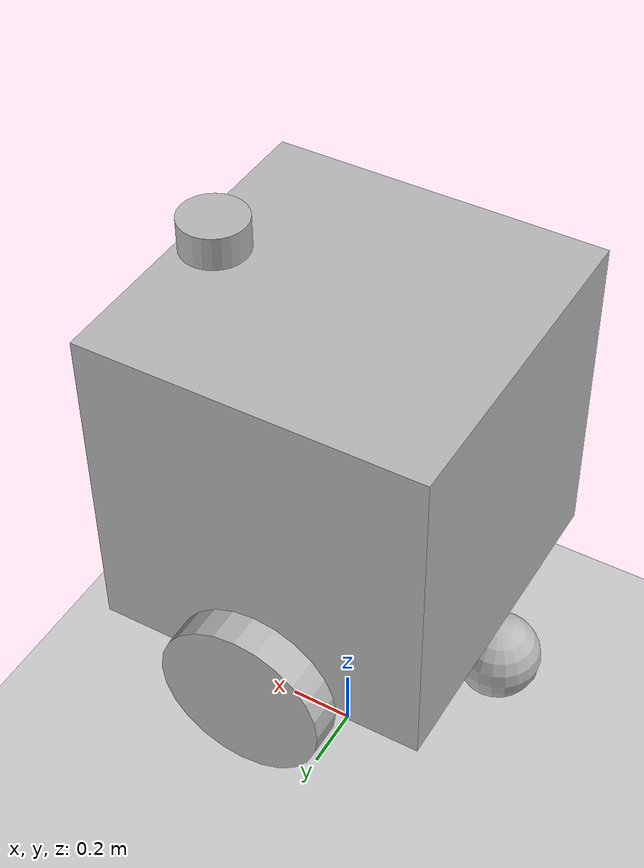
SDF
<?xml version='1.0'?>
<sdf version="1.4">
<world name="default">
  <include>
    <uri>model://ground_plane</uri>
  </include>
  <include>
    <uri>model://sun</uri>
  </include>
<model name="robot">
  <static>false</static>
  <pose>0 0 1 0 0 0</pose>
    <link name="body">
      <pose>0 0 .25 0 0 0</pose>
      <collision name="collision">
        <geometry>
          <box>
            <size>1 1 1</size>
          </box>
        </geometry>
      </collision>
      <visual name="visual">
        <geometry>
          <box>
            <size>1 1 1</size>
          </box>
        </geometry>
      </visual>

      <collision name='caster_collision'>
        <pose>-.5 0 -.625 0 0 0</pose>
        <geometry>
            <sphere>
            <radius>.125</radius>
          </sphere>
        </geometry>

        <surface>
          <friction>
            <ode>
              <mu>0</mu>
              <mu2>0</mu2>
              <slip1>1.0</slip1>
              <slip2>1.0</slip2>
            </ode>
          </friction>
        </surface>
      </collision>

      <visual name='caster_visual'>
        <pose>-.5 0 -.625 0 0 0</pose>
        <geometry>
          <sphere>
            <radius>.125</radius>
          </sphere>
        </geometry>
      </visual>

      <collision name='caster_collision_2'>
        <pose>.5 0 -.625 0 0 0</pose>
        <geometry>
            <sphere>
            <radius>.125</radius>
          </sphere>
        </geometry>

        <surface>
          <friction>
            <ode>
              <mu>0</mu>
              <mu2>0</mu2>
              <slip1>1.0</slip1>
              <slip2>1.0</slip2>
            </ode>
          </friction>
        </surface>
      </collision>

      <visual name='caster_visual_2'>
        <pose>.5 0 -.625 0 0 0</pose>
        <geometry>
          <sphere>
            <radius>.125</radius>
          </sphere>
        </geometry>
      </visual>

    </link>

    <link name="laser_sensor">
      <pose>.4 0 .8 0 0 0</pose>
      <collision name="collision">
        <geometry>
          <cylinder>
            <radius>.1</radius>
            <length>.1</length>
          </cylinder>
        </geometry>
      </collision>
      <visual name="visual">
        <geometry>
          <cylinder>
            <radius>.1</radius>
            <length>.1</length>
          </cylinder>
        </geometry>
      </visual>

      <sensor type="ray" name="sensor">
        <pose>0 0 .05 0 0 0</pose>
        <visualize>true</visualize>
        <update_rate>30</update_rate>
        <ray>
          <scan>
            <horizontal>
              <samples>32</samples>
              <resolution>1</resolution>
              <min_angle>0</min_angle>
              <max_angle>6.28</max_angle>
            </horizontal>
          </scan>
          <range>
            <min>0.05</min>
            <max>70</max>
            <resolution>0.02</resolution>
          </range>
        </ray>
        <plugin name="robot_laser_plugin" filename="libgazebo_ros_laser.so">
          <topicName>/scan_raw</topicName>
          <frameName>laser_sensor</frameName>
        </plugin>
      </sensor>
    </link>
    <link name="left_front_wheel">
      <pose>0 .55 -.25 0 1.5707 1.5707</pose>
      <collision name="collision">
        <geometry>
          <cylinder>
            <radius>.25</radius>
            <length>.1</length>
          </cylinder>
        </geometry>
      </collision>
      <visual name="visual">
        <geometry>
          <cylinder>
            <radius>.25</radius>
            <length>.1</length>
          </cylinder>
        </geometry>
      </visual>
    </link>
    <link name="right_front_wheel">
      <pose>0 -.55 -.25 0 -1.5707 -1.5707</pose>
      <collision name="collision">
        <geometry>
          <cylinder>
            <radius>.25</radius>
            <length>.1</length>
          </cylinder>
        </geometry>
      </collision>
      <visual name="visual">
        <geometry>
          <cylinder>
            <radius>.25</radius>
            <length>.1</length>
          </cylinder>
        </geometry>
      </visual>
    </link>
    <joint type="revolute" name="sensor_hinge">
      <child>laser_sensor</child>
      <parent>body</parent>
      <axis>
        <xyz>0 0 1</xyz>
        <limit>
          <lower>0</lower>
          <upper>0</upper>
        </limit>
      </axis>
    </joint>
    <joint type="revolute" name="left_front_wheel_hinge">
      <child>left_front_wheel</child>
      <parent>body</parent>
      <axis>
        <xyz>0 1 0</xyz>
      </axis>
    </joint>
    <joint type="revolute" name="right_front_wheel_hinge">
      <child>right_front_wheel</child>
      <parent>body</parent>
      <axis>
        <xyz>0 1 0</xyz>
      </axis>
    </joint>
  </model>
</world>
</sdf>
